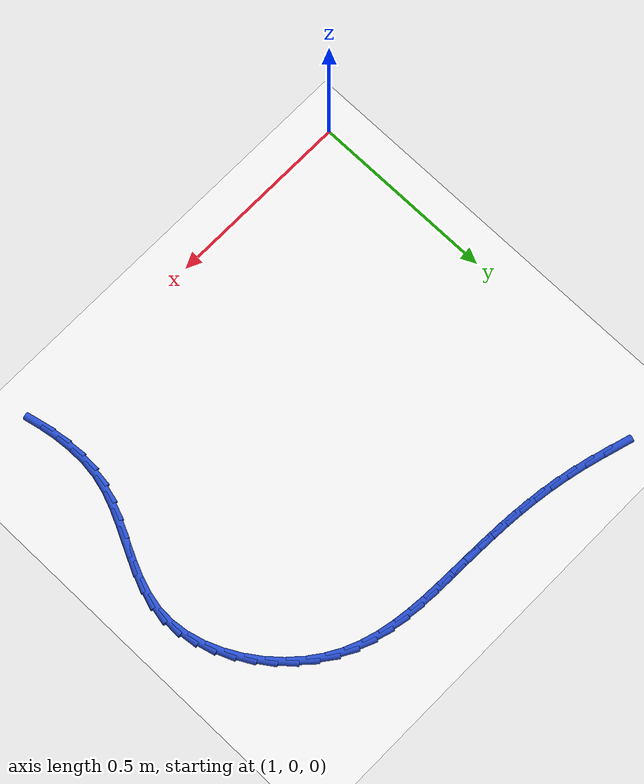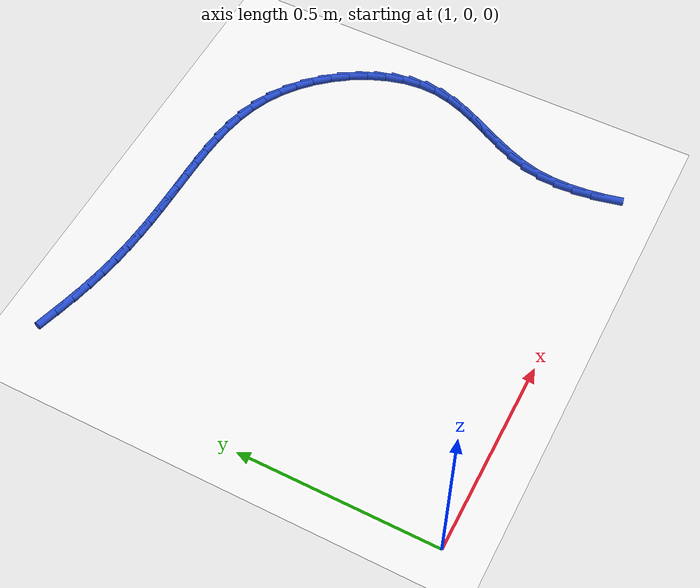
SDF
<sdf version="1.6">
 <world name="default">
  <model name="ground_plane">
   <static>1</static>
   <link name="link">
    <collision name="collision">
     <geometry><plane><normal>0 0 1</normal><size>100 100</size></plane></geometry>
     <surface><friction><ode><mu>100</mu><mu2>50</mu2></ode></friction></surface>
    </collision>
    <visual name="visual">
     <cast_shadows>0</cast_shadows>
     <geometry><plane><normal>0 0 1</normal><size>100 100</size></plane></geometry>
     <material>
      <script><uri>file://media/materials/scripts/gazebo.material</uri><name>Gazebo/WhiteGlow</name></script>
     </material>
    </visual>
   </link>
  </model>
  <model name="line">
   <link name="link_40">
    <pose>1.1065954542690106 1.058117422268368 0.01 0 1.57 -0.28189892076825024</pose>
    <collision name="collision">
     <geometry><cylinder><radius>0.01</radius><length>0.08</length></cylinder></geometry>
    </collision>
    <visual name="visual">
     <material>
      <script><name>Gazebo/Blue</name><uri>file://media/materials/scripts/gazebo.material</uri></script>
     </material>
     <geometry><cylinder><radius>0.01</radius><length>0.08</length></cylinder></geometry>
    </visual>
   </link>
   <link name="link_41">
    <pose>1.1574416347336154 1.0433917893074762 0.01 0 1.57 -0.25704756320887173</pose>
    <collision name="collision">
     <geometry><cylinder><radius>0.01</radius><length>0.08</length></cylinder></geometry>
    </collision>
    <visual name="visual">
     <material>
      <script><name>Gazebo/Blue</name><uri>file://media/materials/scripts/gazebo.material</uri></script>
     </material>
     <geometry><cylinder><radius>0.01</radius><length>0.08</length></cylinder></geometry>
    </visual>
   </link>
   <link name="link_42">
    <pose>1.2071855672068597 1.0303159678766423 0.01 0 1.57 -0.2188253265229126</pose>
    <collision name="collision">
     <geometry><cylinder><radius>0.01</radius><length>0.08</length></cylinder></geometry>
    </collision>
    <visual name="visual">
     <material>
      <script><name>Gazebo/Blue</name><uri>file://media/materials/scripts/gazebo.material</uri></script>
     </material>
     <geometry><cylinder><radius>0.01</radius><length>0.08</length></cylinder></geometry>
    </visual>
   </link>
   <link name="link_43">
    <pose>1.2553755473382653 1.0195991750005597 0.01 0 1.57 -0.17815641731119658</pose>
    <collision name="collision">
     <geometry><cylinder><radius>0.01</radius><length>0.08</length></cylinder></geometry>
    </collision>
    <visual name="visual">
     <material>
      <script><name>Gazebo/Blue</name><uri>file://media/materials/scripts/gazebo.material</uri></script>
     </material>
     <geometry><cylinder><radius>0.01</radius><length>0.08</length></cylinder></geometry>
    </visual>
   </link>
   <link name="link_44">
    <pose>1.3021003082455773 1.011185655857562 0.01 0 1.57 -0.1402155038241167</pose>
    <collision name="collision">
     <geometry><cylinder><radius>0.01</radius><length>0.08</length></cylinder></geometry>
    </collision>
    <visual name="visual">
     <material>
      <script><name>Gazebo/Blue</name><uri>file://media/materials/scripts/gazebo.material</uri></script>
     </material>
     <geometry><cylinder><radius>0.01</radius><length>0.08</length></cylinder></geometry>
    </visual>
   </link>
   <link name="link_45">
    <pose>1.3476326267440555 1.0047591476942048 0.01 0 1.57 -0.10620456201255747</pose>
    <collision name="collision">
     <geometry><cylinder><radius>0.01</radius><length>0.08</length></cylinder></geometry>
    </collision>
    <visual name="visual">
     <material>
      <script><name>Gazebo/Blue</name><uri>file://media/materials/scripts/gazebo.material</uri></script>
     </material>
     <geometry><cylinder><radius>0.01</radius><length>0.08</length></cylinder></geometry>
    </visual>
   </link>
   <link name="link_46">
    <pose>1.392245434185021 1.000003169016221 0.01 0 1.57 -0.07722213106971512</pose>
    <collision name="collision">
     <geometry><cylinder><radius>0.01</radius><length>0.08</length></cylinder></geometry>
    </collision>
    <visual name="visual">
     <material>
      <script><name>Gazebo/Blue</name><uri>file://media/materials/scripts/gazebo.material</uri></script>
     </material>
     <geometry><cylinder><radius>0.01</radius><length>0.08</length></cylinder></geometry>
    </visual>
   </link>
   <link name="link_47">
    <pose>1.4362116619197953 0.9966012383293449 0.01 0 1.57 -0.054184676900650694</pose>
    <collision name="collision">
     <geometry><cylinder><radius>0.01</radius><length>0.08</length></cylinder></geometry>
    </collision>
    <visual name="visual">
     <material>
      <script><name>Gazebo/Blue</name><uri>file://media/materials/scripts/gazebo.material</uri></script>
     </material>
     <geometry><cylinder><radius>0.01</radius><length>0.08</length></cylinder></geometry>
    </visual>
   </link>
   <link name="link_48">
    <pose>1.4798042412997012 0.9942368741393101 0.01 0 1.57 -0.03776563671387576</pose>
    <collision name="collision">
     <geometry><cylinder><radius>0.01</radius><length>0.08</length></cylinder></geometry>
    </collision>
    <visual name="visual">
     <material>
      <script><name>Gazebo/Blue</name><uri>file://media/materials/scripts/gazebo.material</uri></script>
     </material>
     <geometry><cylinder><radius>0.01</radius><length>0.08</length></cylinder></geometry>
    </visual>
   </link>
   <link name="link_49">
    <pose>1.5232961036760597 0.9925935949518494 0.01 0 1.57 -0.028360694953792568</pose>
    <collision name="collision">
     <geometry><cylinder><radius>0.01</radius><length>0.08</length></cylinder></geometry>
    </collision>
    <visual name="visual">
     <material>
      <script><name>Gazebo/Blue</name><uri>file://media/materials/scripts/gazebo.material</uri></script>
     </material>
     <geometry><cylinder><radius>0.01</radius><length>0.08</length></cylinder></geometry>
    </visual>
   </link>
   <link name="link_50">
    <pose>1.5669601804001925 0.991354919272697 0.01 0 1.57 -0.026078284051155576</pose>
    <collision name="collision">
     <geometry><cylinder><radius>0.01</radius><length>0.08</length></cylinder></geometry>
    </collision>
    <visual name="visual">
     <material>
      <script><name>Gazebo/Blue</name><uri>file://media/materials/scripts/gazebo.material</uri></script>
     </material>
     <geometry><cylinder><radius>0.01</radius><length>0.08</length></cylinder></geometry>
    </visual>
   </link>
   <link name="link_51">
    <pose>1.611069402823422 0.9902043656075862 0.01 0 1.57 -0.031574615075211684</pose>
    <collision name="collision">
     <geometry><cylinder><radius>0.01</radius><length>0.08</length></cylinder></geometry>
    </collision>
    <visual name="visual">
     <material>
      <script><name>Gazebo/Blue</name><uri>file://media/materials/scripts/gazebo.material</uri></script>
     </material>
     <geometry><cylinder><radius>0.01</radius><length>0.08</length></cylinder></geometry>
    </visual>
   </link>
   <link name="link_52">
    <pose>1.6558444053412997 0.9887901421338448 0.01 0 1.57 -0.050833337259269765</pose>
    <collision name="collision">
     <geometry><cylinder><radius>0.01</radius><length>0.08</length></cylinder></geometry>
    </collision>
    <visual name="visual">
     <material>
      <script><name>Gazebo/Blue</name><uri>file://media/materials/scripts/gazebo.material</uri></script>
     </material>
     <geometry><cylinder><radius>0.01</radius><length>0.08</length></cylinder></geometry>
    </visual>
   </link>
   <link name="link_53">
    <pose>1.701101673973311 0.9864875804975812 0.01 0 1.57 -0.0866874292920707</pose>
    <collision name="collision">
     <geometry><cylinder><radius>0.01</radius><length>0.08</length></cylinder></geometry>
    </collision>
    <visual name="visual">
     <material>
      <script><name>Gazebo/Blue</name><uri>file://media/materials/scripts/gazebo.material</uri></script>
     </material>
     <geometry><cylinder><radius>0.01</radius><length>0.08</length></cylinder></geometry>
    </visual>
   </link>
   <link name="link_54">
    <pose>1.7464694132903058 0.9825448867849904 0.01 0 1.57 -0.13954339726666562</pose>
    <collision name="collision">
     <geometry><cylinder><radius>0.01</radius><length>0.08</length></cylinder></geometry>
    </collision>
    <visual name="visual">
     <material>
      <script><name>Gazebo/Blue</name><uri>file://media/materials/scripts/gazebo.material</uri></script>
     </material>
     <geometry><cylinder><radius>0.01</radius><length>0.08</length></cylinder></geometry>
    </visual>
   </link>
   <link name="link_55">
    <pose>1.791574775514135 0.9762095565478149 0.01 0 1.57 -0.21004296401570954</pose>
    <collision name="collision">
     <geometry><cylinder><radius>0.01</radius><length>0.08</length></cylinder></geometry>
    </collision>
    <visual name="visual">
     <material>
      <script><name>Gazebo/Blue</name><uri>file://media/materials/scripts/gazebo.material</uri></script>
     </material>
     <geometry><cylinder><radius>0.01</radius><length>0.08</length></cylinder></geometry>
    </visual>
   </link>
   <link name="link_56">
    <pose>1.836044912866647 0.9667290853377959 0.01 0 1.57 -0.2986076709436819</pose>
    <collision name="collision">
     <geometry><cylinder><radius>0.01</radius><length>0.08</length></cylinder></geometry>
    </collision>
    <visual name="visual">
     <material>
      <script><name>Gazebo/Blue</name><uri>file://media/materials/scripts/gazebo.material</uri></script>
     </material>
     <geometry><cylinder><radius>0.01</radius><length>0.08</length></cylinder></geometry>
    </visual>
   </link>
   <link name="link_57">
    <pose>1.8795069775696918 0.9533509687066757 0.01 0 1.57 -0.4047610908728204</pose>
    <collision name="collision">
     <geometry><cylinder><radius>0.01</radius><length>0.08</length></cylinder></geometry>
    </collision>
    <visual name="visual">
     <material>
      <script><name>Gazebo/Blue</name><uri>file://media/materials/scripts/gazebo.material</uri></script>
     </material>
     <geometry><cylinder><radius>0.01</radius><length>0.08</length></cylinder></geometry>
    </visual>
   </link>
   <link name="link_58">
    <pose>1.9215881218451185 0.9353227022061963 0.01 0 1.57 -0.5256735733633165</pose>
    <collision name="collision">
     <geometry><cylinder><radius>0.01</radius><length>0.08</length></cylinder></geometry>
    </collision>
    <visual name="visual">
     <material>
      <script><name>Gazebo/Blue</name><uri>file://media/materials/scripts/gazebo.material</uri></script>
     </material>
     <geometry><cylinder><radius>0.01</radius><length>0.08</length></cylinder></geometry>
    </visual>
   </link>
   <link name="link_59">
    <pose>1.9619090576013651 0.9119317214395879 0.01 0 1.57 -0.6461622778222932</pose>
    <collision name="collision">
     <geometry><cylinder><radius>0.01</radius><length>0.08</length></cylinder></geometry>
    </collision>
    <visual name="visual">
     <material>
      <script><name>Gazebo/Blue</name><uri>file://media/materials/scripts/gazebo.material</uri></script>
     </material>
     <geometry><cylinder><radius>0.01</radius><length>0.08</length></cylinder></geometry>
    </visual>
   </link>
   <link name="link_60">
    <pose>1.9999673002758194 0.8832294734927572 0.01 0 1.57 -0.7575470924110673</pose>
    <collision name="collision">
     <geometry><cylinder><radius>0.01</radius><length>0.08</length></cylinder></geometry>
    </collision>
    <visual name="visual">
     <material>
      <script><name>Gazebo/Blue</name><uri>file://media/materials/scripts/gazebo.material</uri></script>
     </material>
     <geometry><cylinder><radius>0.01</radius><length>0.08</length></cylinder></geometry>
    </visual>
   </link>
   <link name="link_61">
    <pose>2.0351496081503644 0.8499542736538162 0.01 0 1.57 -0.8636997728776732</pose>
    <collision name="collision">
     <geometry><cylinder><radius>0.01</radius><length>0.08</length></cylinder></geometry>
    </collision>
    <visual name="visual">
     <material>
      <script><name>Gazebo/Blue</name><uri>file://media/materials/scripts/gazebo.material</uri></script>
     </material>
     <geometry><cylinder><radius>0.01</radius><length>0.08</length></cylinder></geometry>
    </visual>
   </link>
   <link name="link_62">
    <pose>2.0668387958957752 0.812868893789425 0.01 0 1.57 -0.9687189788338244</pose>
    <collision name="collision">
     <geometry><cylinder><radius>0.01</radius><length>0.08</length></cylinder></geometry>
    </collision>
    <visual name="visual">
     <material>
      <script><name>Gazebo/Blue</name><uri>file://media/materials/scripts/gazebo.material</uri></script>
     </material>
     <geometry><cylinder><radius>0.01</radius><length>0.08</length></cylinder></geometry>
    </visual>
   </link>
   <link name="link_63">
    <pose>2.0944176781828268 0.772736105766242 0.01 0 1.57 -1.0766495571068124</pose>
    <collision name="collision">
     <geometry><cylinder><radius>0.01</radius><length>0.08</length></cylinder></geometry>
    </collision>
    <visual name="visual">
     <material>
      <script><name>Gazebo/Blue</name><uri>file://media/materials/scripts/gazebo.material</uri></script>
     </material>
     <geometry><cylinder><radius>0.01</radius><length>0.08</length></cylinder></geometry>
    </visual>
   </link>
   <link name="link_64">
    <pose>2.117269069682293 0.7303186814509276 0.01 0 1.57 -1.1916444333201475</pose>
    <collision name="collision">
     <geometry><cylinder><radius>0.01</radius><length>0.08</length></cylinder></geometry>
    </collision>
    <visual name="visual">
     <material>
      <script><name>Gazebo/Blue</name><uri>file://media/materials/scripts/gazebo.material</uri></script>
     </material>
     <geometry><cylinder><radius>0.01</radius><length>0.08</length></cylinder></geometry>
    </visual>
   </link>
   <link name="link_65">
    <pose>2.13477578506495 0.6863793927101408 0.01 0 1.57 -1.3180367601791791</pose>
    <collision name="collision">
     <geometry><cylinder><radius>0.01</radius><length>0.08</length></cylinder></geometry>
    </collision>
    <visual name="visual">
     <material>
      <script><name>Gazebo/Blue</name><uri>file://media/materials/scripts/gazebo.material</uri></script>
     </material>
     <geometry><cylinder><radius>0.01</radius><length>0.08</length></cylinder></geometry>
    </visual>
   </link>
   <link name="link_66">
    <pose>2.146320639001571 0.6416810114105402 0.01 0 1.57 -1.4601450914535388</pose>
    <collision name="collision">
     <geometry><cylinder><radius>0.01</radius><length>0.08</length></cylinder></geometry>
    </collision>
    <visual name="visual">
     <material>
      <script><name>Gazebo/Blue</name><uri>file://media/materials/scripts/gazebo.material</uri></script>
     </material>
     <geometry><cylinder><radius>0.01</radius><length>0.08</length></cylinder></geometry>
    </visual>
   </link>
   <link name="link_67">
    <pose>2.151286446162932 0.5969863094187864 0.01 0 1.57 1.5202927509333584</pose>
    <collision name="collision">
     <geometry><cylinder><radius>0.01</radius><length>0.08</length></cylinder></geometry>
    </collision>
    <visual name="visual">
     <material>
      <script><name>Gazebo/Blue</name><uri>file://media/materials/scripts/gazebo.material</uri></script>
     </material>
     <geometry><cylinder><radius>0.01</radius><length>0.08</length></cylinder></geometry>
    </visual>
   </link>
   <link name="link_68">
    <pose>2.14906579100036 0.5530534433926741 0.01 0 1.57 1.3586519011553262</pose>
    <collision name="collision">
     <geometry><cylinder><radius>0.01</radius><length>0.08</length></cylinder></geometry>
    </collision>
    <visual name="visual">
     <material>
      <script><name>Gazebo/Blue</name><uri>file://media/materials/scripts/gazebo.material</uri></script>
     </material>
     <geometry><cylinder><radius>0.01</radius><length>0.08</length></cylinder></geometry>
    </visual>
   </link>
   <link name="link_69">
    <pose>2.139849465325234 0.5102634997310374 0.01 0 1.57 1.2346990748952713</pose>
    <collision name="collision">
     <geometry><cylinder><radius>0.01</radius><length>0.08</length></cylinder></geometry>
    </collision>
    <visual name="visual">
     <material>
      <script><name>Gazebo/Blue</name><uri>file://media/materials/scripts/gazebo.material</uri></script>
     </material>
     <geometry><cylinder><radius>0.01</radius><length>0.08</length></cylinder></geometry>
    </visual>
   </link>
   <link name="link_70">
    <pose>2.1252057978249317 0.4683468214136925 0.01 0 1.57 1.153054852317877</pose>
    <collision name="collision">
     <geometry><cylinder><radius>0.01</radius><length>0.08</length></cylinder></geometry>
    </collision>
    <visual name="visual">
     <material>
      <script><name>Gazebo/Blue</name><uri>file://media/materials/scripts/gazebo.material</uri></script>
     </material>
     <geometry><cylinder><radius>0.01</radius><length>0.08</length></cylinder></geometry>
    </visual>
   </link>
   <link name="link_71">
    <pose>2.1068396818772888 0.42696923875648796 0.01 0 1.57 1.1110941723923164</pose>
    <collision name="collision">
     <geometry><cylinder><radius>0.01</radius><length>0.08</length></cylinder></geometry>
    </collision>
    <visual name="visual">
     <material>
      <script><name>Gazebo/Blue</name><uri>file://media/materials/scripts/gazebo.material</uri></script>
     </material>
     <geometry><cylinder><radius>0.01</radius><length>0.08</length></cylinder></geometry>
    </visual>
   </link>
   <link name="link_72">
    <pose>2.086456010860141 0.38579658207527323 0.01 0 1.57 1.1062700644774541</pose>
    <collision name="collision">
     <geometry><cylinder><radius>0.01</radius><length>0.08</length></cylinder></geometry>
    </collision>
    <visual name="visual">
     <material>
      <script><name>Gazebo/Blue</name><uri>file://media/materials/scripts/gazebo.material</uri></script>
     </material>
     <geometry><cylinder><radius>0.01</radius><length>0.08</length></cylinder></geometry>
    </visual>
   </link>
   <link name="link_73">
    <pose>2.0657596781513248 0.3444946816858967 0.01 0 1.57 1.1378399097468377</pose>
    <collision name="collision">
     <geometry><cylinder><radius>0.01</radius><length>0.08</length></cylinder></geometry>
    </collision>
    <visual name="visual">
     <material>
      <script><name>Gazebo/Blue</name><uri>file://media/materials/scripts/gazebo.material</uri></script>
     </material>
     <geometry><cylinder><radius>0.01</radius><length>0.08</length></cylinder></geometry>
    </visual>
   </link>
   <link name="link_74">
    <pose>2.0464555771286745 0.30272936790420757 0.01 0 1.57 1.2069704560773555</pose>
    <collision name="collision">
     <geometry><cylinder><radius>0.01</radius><length>0.08</length></cylinder></geometry>
    </collision>
    <visual name="visual">
     <material>
      <script><name>Gazebo/Blue</name><uri>file://media/materials/scripts/gazebo.material</uri></script>
     </material>
     <geometry><cylinder><radius>0.01</radius><length>0.08</length></cylinder></geometry>
    </visual>
   </link>
   <link name="link_75">
    <pose>2.0302486011700265 0.2601664710460544 0.01 0 1.57 1.3154053156962984</pose>
    <collision name="collision">
     <geometry><cylinder><radius>0.01</radius><length>0.08</length></cylinder></geometry>
    </collision>
    <visual name="visual">
     <material>
      <script><name>Gazebo/Blue</name><uri>file://media/materials/scripts/gazebo.material</uri></script>
     </material>
     <geometry><cylinder><radius>0.01</radius><length>0.08</length></cylinder></geometry>
    </visual>
   </link>
   <link name="link_76">
    <pose>2.018840449403308 0.21647254513109843 0.01 0 1.57 1.4469641923259475</pose>
    <collision name="collision">
     <geometry><cylinder><radius>0.01</radius><length>0.08</length></cylinder></geometry>
    </collision>
    <visual name="visual">
     <material>
      <script><name>Gazebo/Blue</name><uri>file://media/materials/scripts/gazebo.material</uri></script>
     </material>
     <geometry><cylinder><radius>0.01</radius><length>0.08</length></cylinder></geometry>
    </visual>
   </link>
   <link name="link_77">
    <pose>2.013239188785338 0.17147129664407226 0.01 0 1.57 1.563382027461413</pose>
    <collision name="collision">
     <geometry><cylinder><radius>0.01</radius><length>0.08</length></cylinder></geometry>
    </collision>
    <visual name="visual">
     <material>
      <script><name>Gazebo/Blue</name><uri>file://media/materials/scripts/gazebo.material</uri></script>
     </material>
     <geometry><cylinder><radius>0.01</radius><length>0.08</length></cylinder></geometry>
    </visual>
   </link>
   <link name="link_78">
    <pose>2.0128971431816343 0.12533890831287417 0.01 0 1.57 -1.482637314583374</pose>
    <collision name="collision">
     <geometry><cylinder><radius>0.01</radius><length>0.08</length></cylinder></geometry>
    </collision>
    <visual name="visual">
     <material>
      <script><name>Gazebo/Blue</name><uri>file://media/materials/scripts/gazebo.material</uri></script>
     </material>
     <geometry><cylinder><radius>0.01</radius><length>0.08</length></cylinder></geometry>
    </visual>
   </link>
   <link name="link_79">
    <pose>2.017054864033257 0.07829954299078504 0.01 0 1.57 -1.40678263072887</pose>
    <collision name="collision">
     <geometry><cylinder><radius>0.01</radius><length>0.08</length></cylinder></geometry>
    </collision>
    <visual name="visual">
     <material>
      <script><name>Gazebo/Blue</name><uri>file://media/materials/scripts/gazebo.material</uri></script>
     </material>
     <geometry><cylinder><radius>0.01</radius><length>0.08</length></cylinder></geometry>
    </visual>
   </link>
   <link name="link_80">
    <pose>2.0249529027812616 0.03057736353108418 0.01 0 1.57 -1.3487269520165397</pose>
    <collision name="collision">
     <geometry><cylinder><radius>0.01</radius><length>0.08</length></cylinder></geometry>
    </collision>
    <visual name="visual">
     <material>
      <script><name>Gazebo/Blue</name><uri>file://media/materials/scripts/gazebo.material</uri></script>
     </material>
     <geometry><cylinder><radius>0.01</radius><length>0.08</length></cylinder></geometry>
    </visual>
   </link>
  </model>
 </world>
</sdf>
